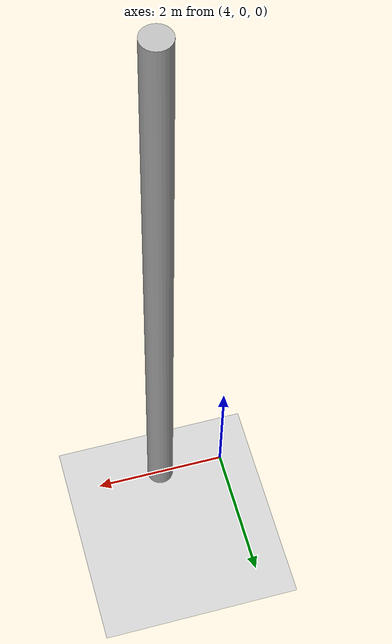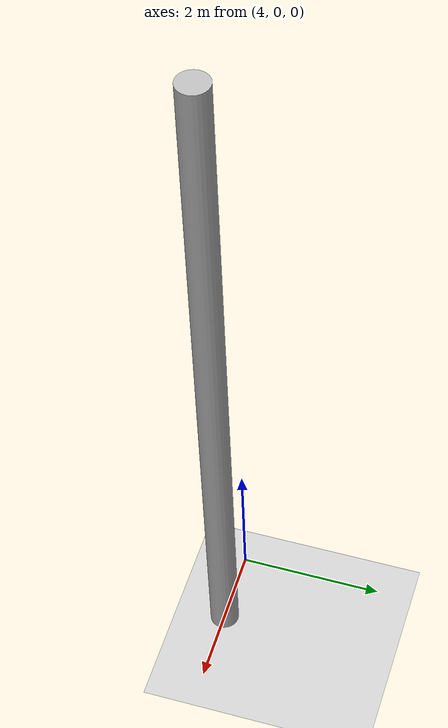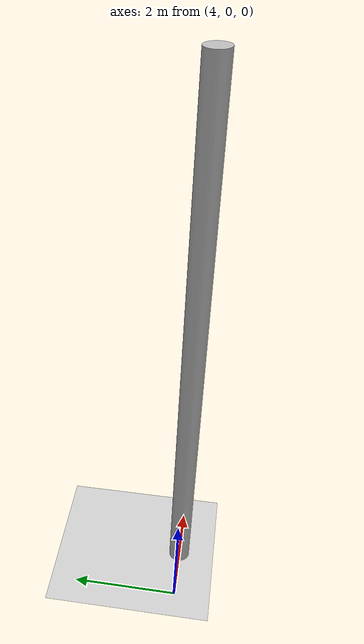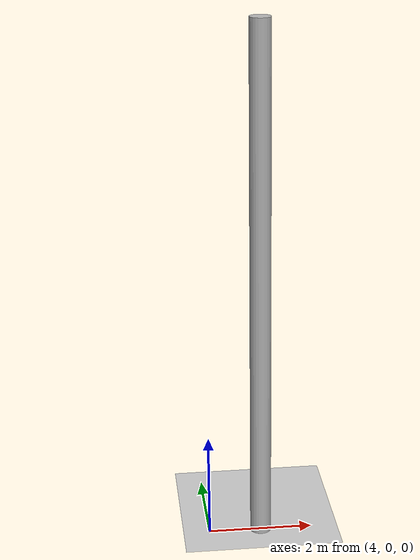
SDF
<?xml version='1.0'?>
<sdf version='1.7'>
  <world name='myWRLD'>

    <include>
        <uri>model://ground_plane</uri>
    </include>

    <include>
        <uri>model://sun</uri>
    </include>

    <!-- add a simple arm into the world -->

    <model name="box">

        <pose>5 0 5 0 0 0</pose>

        <link name="box">
            <collision name="collision">
                <geometry>
                    <cylinder>
                        <radius>0.2</radius>
                        <length>10</length>
                    </cylinder>
                </geometry>
            </collision>

            <visual name="visual">
                <geometry>
                <cylinder>
                    <radius>0.2</radius>
                    <length>10</length>
                </cylinder>
                </geometry>
            </visual>
        </link>

        <!-- output the data on world_stats topic -->

        <plugin name="libbasic_model_plugin_ros" filename="libbasic_model_plugin_ros.so">
            <model_vel>0.3</model_vel>
            <test name="testName"/>
        </plugin>

        <plugin name="gazebo_ros_6dof_joint_state_publisher"
            filename="libgazebo_ros_6dof_joint_state_publisher.so">
        </plugin>

      </model>

  </world>
</sdf>
